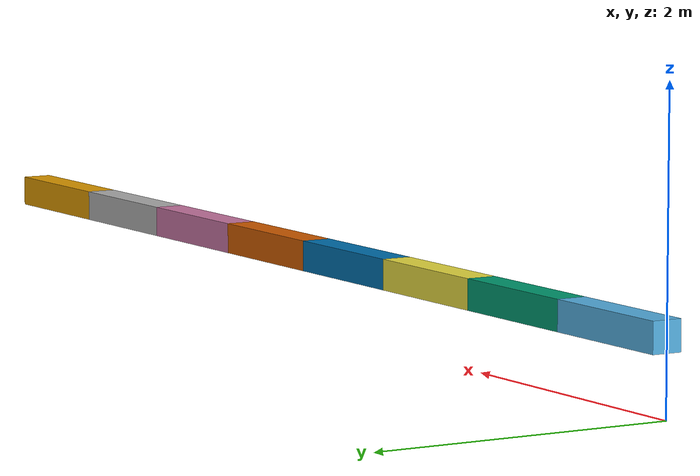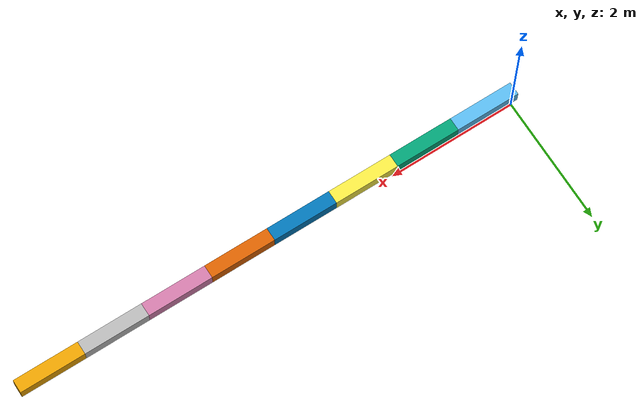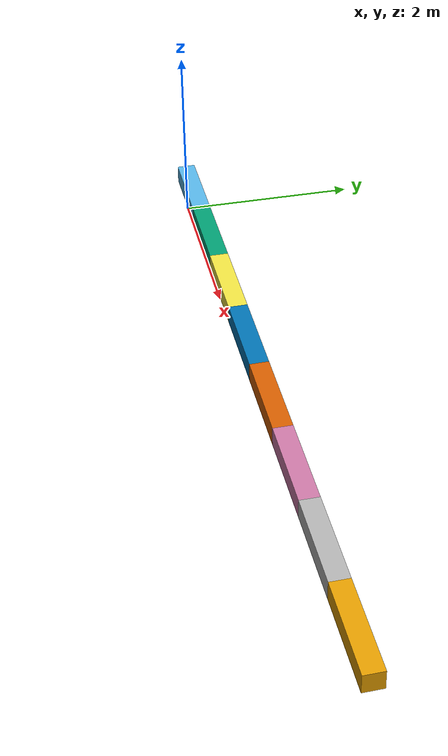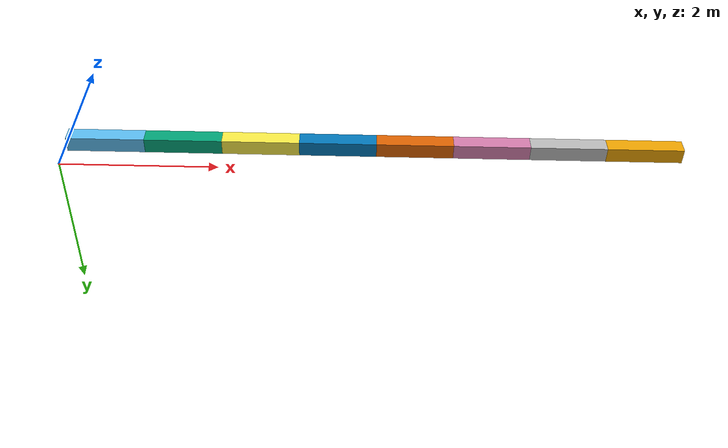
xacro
<?xml version="1.0"?>
<robot xmlns:xacro="http://www.ros.org/wiki/xacro" name="sevenbot">

  <!-- Gazebo Plugin -->
  <gazebo>
    <plugin name="ros_control" filename="libgazebo_ros_control.so">
      <robotNamespace>sevenbot</robotNamespace>
      <controlPeriod>0.001</controlPeriod>
    </plugin>
  </gazebo>

  <xacro:macro name="botlink" params="name">
    <link name="${name}">
      <inertial>
        <origin xyz="0 0 0.5" rpy="0 0 0"/>
        <mass value="0.1"/>
        <inertia ixx="0.1"  ixy="0"  ixz="0" iyy="0.1" iyz="0" izz="0.1" />
      </inertial>
      <visual>
        <origin xyz="0.5 0 0.5" rpy="0 0 0" />
        <geometry>
          <box size="1.0 0.2 0.2" />
        </geometry>
      </visual>
    </link>
  </xacro:macro>

  <xacro:macro name="botjoint" params="name parent child">
    <joint name="${name}" type="revolute">
      <axis xyz="0 0 1"/>
      <origin xyz="1 0 0" rpy="0 0 0"/>
      <parent link="${parent}"/>
      <child link="${child}"/>
      <dynamics damping="0.01" friction="0.0"/>
      <limit effort="100" velocity="100.0" lower="-1.57" upper="1.57" />
    </joint>

    <transmission name="trans_${name}">
      <type>transmission_interface/SimpleTransmission</type>
      <joint name="${name}"/>
      <actuator name="motor_${name}">
        <hardwareInterface>EffortJointInterface</hardwareInterface>
        <mechanicalReduction>1</mechanicalReduction>
      </actuator>
    </transmission>

  </xacro:macro>

  <link name="world"/>
  <xacro:botlink name="base_link"/>
  <xacro:botlink name="l1"/>
  <xacro:botlink name="l2"/>
  <xacro:botlink name="l3"/>
  <xacro:botlink name="l4"/>
  <xacro:botlink name="l5"/>
  <xacro:botlink name="l6"/>
  <xacro:botlink name="l7"/>

  <joint name="base_joint" type="fixed">
    <parent link="world"/>
    <child link="base_link"/>
  </joint>

  <xacro:botjoint name="j1" parent="base_link" child="l1"/>
  <xacro:botjoint name="j2" parent="l1" child="l2"/>
  <xacro:botjoint name="j3" parent="l2" child="l3"/>
  <xacro:botjoint name="j4" parent="l3" child="l4"/>
  <xacro:botjoint name="j5" parent="l4" child="l5"/>
  <xacro:botjoint name="j6" parent="l5" child="l6"/>
  <xacro:botjoint name="j7" parent="l6" child="l7"/>

</robot>
